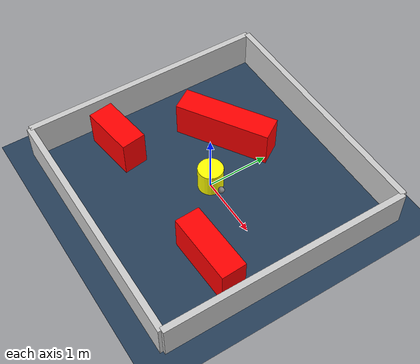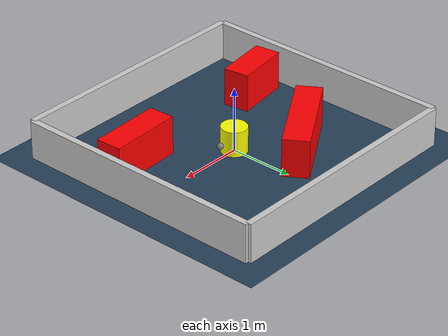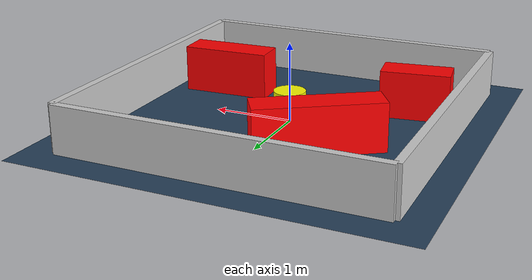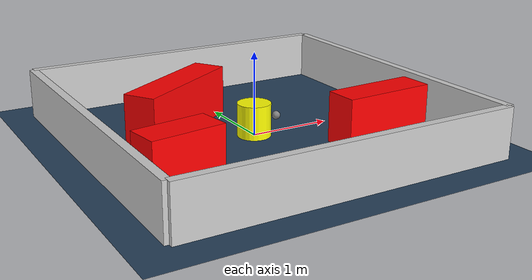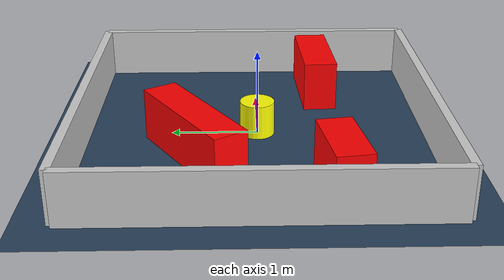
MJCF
<?xml version="1.0" ?>
<mujoco model="generated_environment">
  <option timestep="0.01" integrator="RK4" cone="elliptic"/>
  <default>
    <geom density="1"/>
  </default>
  <asset>
    <texture builtin="gradient" height="3072" rgb1="0.3 0.5 0.7" rgb2="0 0 0" type="skybox" width="512"/>
    <texture builtin="checker" height="300" mark="edge" markrgb="0.8 0.8 0.8" name="groundplane" rgb1="0.2 0.3 0.4" rgb2="0.1 0.2 0.3" type="2d" width="300"/>
    <material name="groundplane" reflectance="0.2" texrepeat="5 5" texture="groundplane" texuniform="true"/>
    <material name="robot" rgba="0.0 1.0 0.0 1"/>
  </asset>
  <worldbody>
    <light dir="0 0 -1" directional="true" pos="0 0 1.5"/>
    <geom condim="4" friction="1.0 0.005 0.001" material="groundplane" name="floor" size="0 0 0.05" type="plane"/>
    <body name="walls">
      <geom name="wall_1" condim="4" pos="-2.0 0.0 0.3" rgba="0.800000011920929 0.800000011920929 0.800000011920929 1.0" size="0.05 2.0 0.3" type="box"/>
      <geom name="wall_2" condim="4" pos="2.0 0.0 0.3" rgba="0.800000011920929 0.800000011920929 0.800000011920929 1.0" size="0.05 2.0 0.3" type="box"/>
      <geom name="wall_3" condim="4" pos="0.0 -2.0 0.3" rgba="0.800000011920929 0.800000011920929 0.800000011920929 1.0" size="2.0 0.05 0.3" type="box"/>
      <geom name="wall_4" condim="4" pos="0.0 2.0 0.3" rgba="0.800000011920929 0.800000011920929 0.800000011920929 1.0" size="2.0 0.05 0.3" type="box"/>
    </body>
    <body name="robot">
      <joint name="joint_x" type="slide" pos="0 0 0" axis="1 0 0"/>
      <joint name="joint_y" type="slide" pos="0 0 0" axis="0 1 0"/>
      <geom name="robot" type="sphere" pos="0.3 0.0 0.2" size="0.05" mass="5." friction="1.0 0.005 0.0001" condim="4" rgba="0.5 0.5 0.5 1.0"/>
      <site name="sensor_ball"/>
    </body>
    <body name="obstacle_movable_1">
      <geom name="obstacle_movable_1" condim="4" pos="0.0 0.0 0.2" euler="0 0 0.0" friction="1.0 0.005 0.001" rgba="1.0 1.0 0.0 1.0" size="0.2 0.2 0.0" type="cylinder" mass="0.1"/>
      <joint type="free"/>
    </body>
    <body name="obstacle_2_static">
      <geom name="obstacle_2_static" condim="4" pos="-0.6602743654356101 0.7071286324378161 0.3" euler="0 0 32.66734436309158" friction="1.0 0.005 0.001" rgba="1 0 0 1" size="0.7737790147873044 0.2 0.3" type="box"/>
    </body>
    <body name="obstacle_3_static">
      <geom name="obstacle_3_static" condim="4" pos="1.2100647013126173 -0.7738435890268485 0.3" euler="0 0 2.658984620616147" friction="1.0 0.005 0.001" rgba="1 0 0 1" size="0.5662708598521861 0.2 0.3" type="box"/>
    </body>
    <body name="obstacle_4_static">
      <geom name="obstacle_4_static" condim="4" pos="-1.3540140146635895 -0.8451681431639181 0.3" euler="0 0 8.28698797702172" friction="1.0 0.005 0.001" rgba="1 0 0 1" size="0.43194842627874913 0.2 0.3" type="box"/>
    </body>
  </worldbody>
  <actuator>
    <motor name="actuator_x" joint="joint_x" gear="1" ctrlrange="-1 1"/>
    <motor name="actuator_y" joint="joint_y" gear="1" ctrlrange="-1 1"/>
  </actuator>
</mujoco>
